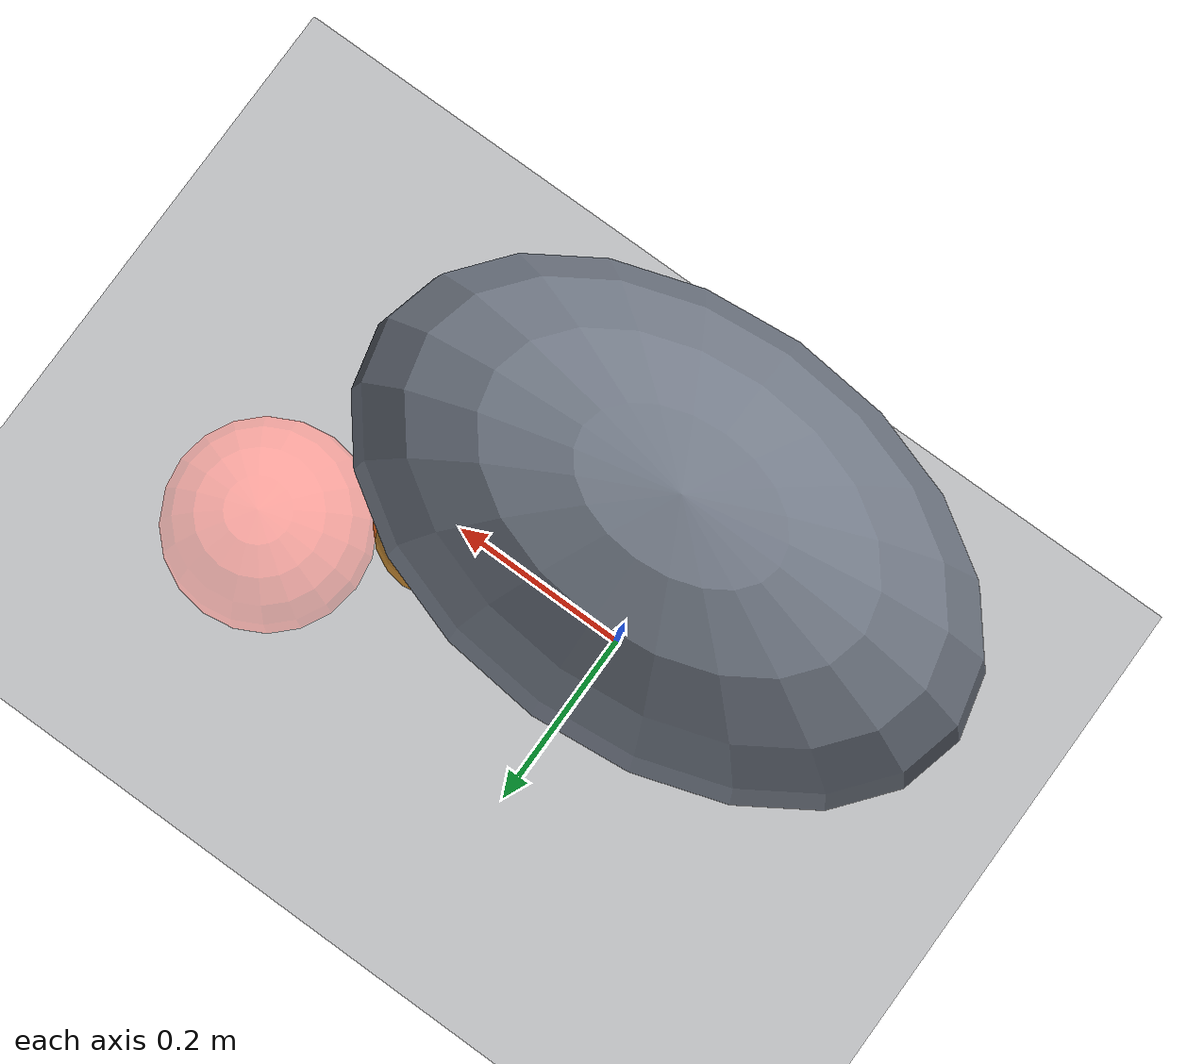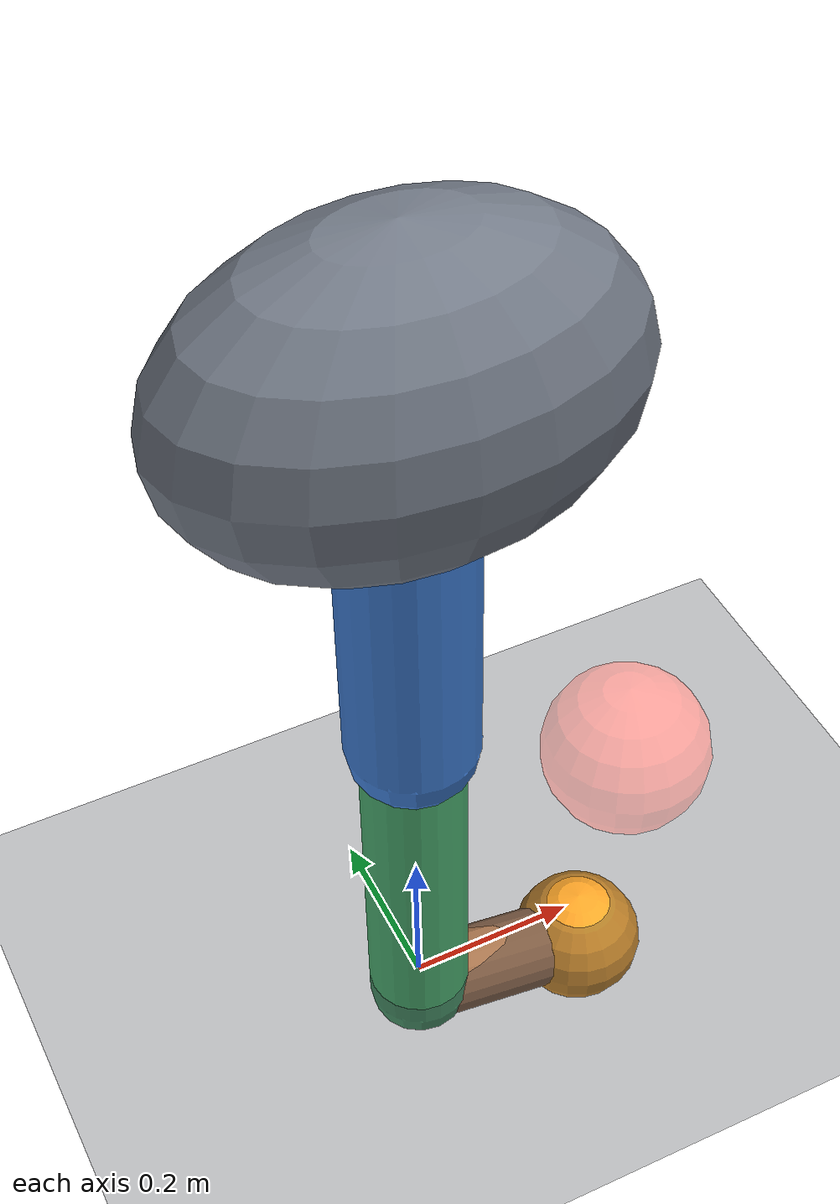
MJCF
<mujoco model="IK human chain">
  <option gravity="0 0 0"/>
  <visual><headlight ambient=".25 .25 .25" diffuse=".75 .75 .75"/></visual>
  <worldbody>
    <geom type="plane" size="3 3 .1" rgba=".16 .18 .21 1"/>
    <site name="goal" pos=".35 .12 .1" size=".11" rgba="1 .25 .2 .45"/>
    <body name="pelvis" pos="0 0 .9">
      <geom type="ellipsoid" size=".25 .16 .18" rgba=".45 .48 .53 1"/>
      <body name="thigh">
        <joint name="hip x" type="hinge" axis="1 0 0" range="-45 45"/>
        <joint name="hip y" type="hinge" axis="0 1 0" range="-120 45"/>
        <joint name="hip z" type="hinge" axis="0 0 1" range="-60 60"/>
        <geom type="capsule" fromto="0 0 0 0 0 -.48" size=".075" rgba=".25 .5 .85 1"/>
        <body name="shin" pos="0 0 -.48">
          <joint name="knee" type="hinge" axis="0 1 0" range="-150 0"/>
          <geom type="capsule" fromto="0 0 0 0 0 -.45" size=".06" rgba=".3 .7 .45 1"/>
          <body name="foot" pos="0 0 -.45">
            <joint name="ankle" type="hinge" axis="0 1 0" range="-45 45"/>
            <geom type="capsule" fromto="0 0 0 .22 0 -.04" size=".05" rgba=".65 .45 .3 1"/>
            <site name="toe" pos=".22 0 -.04" size=".08" rgba="1 .65 .15 1"/>
          </body>
        </body>
      </body>
    </body>
  </worldbody>
</mujoco>
